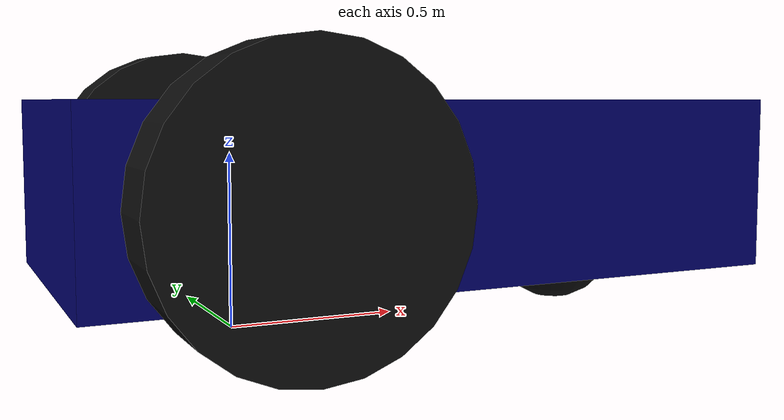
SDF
<?xml version="1.0" ?>
<sdf version="1.7">

    <model name="my_robot" canonical_link="chassis">

        <frame name="lidar_frame" attached_to="chassis">
            <pose>0.8 0 0.5 0 0 0</pose>
        </frame>

        <!-- CHASSIS -->
        <link name="chassis">
            <pose relative_to="__model__">0.5 0 0.4 0 0 0</pose>
            <inertial>
            <mass>1.14395</mass>
            <inertia>
                <ixx>0.095329</ixx>
                <ixy>0</ixy>
                <ixz>0</ixz>
                <iyy>0.381317</iyy>
                <iyz>0</iyz>
                <izz>0.476646</izz>
            </inertia>
            </inertial>

            <!-- VISUAL -->
            <visual name="visual">
            <geometry>
                <box>
                <size>2.0 1.0 0.5</size>
                </box>
            </geometry>
            <!-- COLOR -->
            <material>
                <ambient>0.0 0.0 0.3 1</ambient>
                <diffuse>0.0 0.0 0.4 1</diffuse>
                <specular>0.1 0.1 0.3 1</specular>
            </material>
            </visual>

            <collision name="collision">
                <geometry>
                    <box>
                    <size>2.0 1.0 0.5</size>
                    </box>
                </geometry>
            </collision>

            <sensor name="imu_sensor" type="imu">
                <always_on>true</always_on>
                <update_rate>1</update_rate>
                <visualize>true</visualize>
                <topic>imu</topic>
            </sensor>

            <sensor name="gpu_lidar" type="gpu_lidar">
                <pose relative_to="lidar_frame">0 0 0 0 0 0</pose>
                <topic>lidar</topic>
                <update_rate>10</update_rate>
                <ray>
                    <scan>
                        <horizontal>
                            <samples>640</samples>
                            <resolution>1</resolution>
                            <min_angle>-1.396263</min_angle>
                            <max_angle>1.396263</max_angle>
                        </horizontal>
                        <vertical>
                            <samples>1</samples>
                            <resolution>0.01</resolution>
                            <min_angle>0</min_angle>
                            <max_angle>0</max_angle>
                        </vertical>
                    </scan>
                    <range>
                        <min>0.08</min>
                        <max>10.0</max>
                        <resolution>0.01</resolution>
                    </range>
                </ray>
                <always_on>true</always_on>
                <visualize>true</visualize>

            </sensor>
        </link>

        <!-- RODA KIRI -->
        <link name="left_wheel">
            <pose relative_to="chassis">-0.5 0.6 0 -1.5707 0 0</pose>
            <inertial>
            <mass>1</mass>
            <inertia>
                <ixx>0.043333</ixx>
                <ixy>0</ixy>
                <ixz>0</ixz>
                <iyy>0.043333</iyy>
                <iyz>0</iyz>
                <izz>0.08</izz>
            </inertia>
            </inertial>

            <visual name="visual">
            <geometry>
                <cylinder>
                <radius>0.4</radius>
                <length>0.2</length>
                </cylinder>
            </geometry>
            <material>
                <ambient>0.05 0.05 0.05 1</ambient>
                <diffuse>0.05 0.05 0.05 1</diffuse>
                <specular>0.1 0.1 0.1 1</specular>
            </material>
            </visual>

            <collision name="collision">
            <geometry>
                <cylinder>
                <radius>0.4</radius>
                <length>0.2</length>
                </cylinder>
            </geometry>
            </collision>
        </link>

        <!-- RODA KANAN -->
        <link name="right_wheel">
            <pose relative_to="chassis">-0.5 -0.6 0 -1.5707 0 0</pose>
            <inertial>
            <mass>1</mass>
            <inertia>
                <ixx>0.043333</ixx>
                <ixy>0</ixy>
                <ixz>0</ixz>
                <iyy>0.043333</iyy>
                <iyz>0</iyz>
                <izz>0.08</izz>
            </inertia>
            </inertial>

            <visual name="visual">
            <geometry>
                <cylinder>
                <radius>0.4</radius>
                <length>0.2</length>
                </cylinder>
            </geometry>
            <material>
                <ambient>0.05 0.05 0.05 1</ambient>
                <diffuse>0.05 0.05 0.05 1</diffuse>
                <specular>0.1 0.1 0.1 1</specular>
            </material>
            </visual>

            <collision name="collision">
            <geometry>
                <cylinder>
                <radius>0.4</radius>
                <length>0.2</length>
                </cylinder>
            </geometry>
            </collision>
        </link>

        <frame name="caster_frame" attached_to="chassis">
            <pose>0.6 0 -0.2 0 0 0</pose>
        </frame>

        <link name="caster">
            <pose relative_to="caster_frame"/>
            <inertial>
            <mass>1</mass>
            <inertia>
                <ixx>0.016</ixx>
                <ixy>0</ixy>
                <ixz>0</ixz>
                <iyy>0.016</iyy>
                <iyz>0</iyz>
                <izz>0.016</izz>
            </inertia>
            </inertial>

            <visual name="visual">
            <geometry>
                <sphere>
                    <radius>0.2</radius>
                </sphere>
            </geometry>
            <material>
                <ambient>0.05 0.05 0.05 1</ambient>
                <diffuse>0.05 0.05 0.05 1</diffuse>
                <specular>0.1 0.1 0.1 1</specular>
            </material>
            </visual>

            <collision name="collision">
            <geometry>
                <sphere>
                    <radius>0.2</radius>
                </sphere>
            </geometry>
            </collision>
        </link>

        <!-- JOINT -->
        <joint name="left_wheel_joint" type="revolute">
            <pose relative_to="left_wheel"/>
            <parent>chassis</parent>
            <child>left_wheel</child>
            <axis>
                <xyz expressed_in="__model__">0 1 0</xyz>
                <limit>
                    <lower>-1.79769e+308</lower>
                    <upper>1.79769e+308</upper>
                </limit>
            </axis>
        </joint>

        <joint name="right_wheel_joint" type="revolute">
            <pose relative_to="right_wheel"/>
            <parent>chassis</parent>
            <child>right_wheel</child>
            <axis>
            <xyz expressed_in="__model__">0 1 0</xyz>
            <limit>
                <lower>-1.79769e+308</lower>
                <upper>1.79769e+308</upper>
            </limit>
            </axis>
        </joint>

        <joint name="caster_wheel" type="ball">
            <parent>chassis</parent>
            <child>caster</child>
        </joint>

        <plugin
            filename="libignition-gazebo-diff-drive-system.so"
            name="ignition::gazebo::systems::DiffDrive">
            <left_joint>left_wheel_joint</left_joint>
            <right_joint>right_wheel_joint</right_joint>
            <wheel_separation>1.2</wheel_separation>
            <wheel_radius>0.4</wheel_radius>
            <odom_publish_frequency>1</odom_publish_frequency>
            <topic>/cmd_vel</topic>
        </plugin>

        <!-- W = MOVE FORWARD -->
        <plugin filename="gz-sim-triggered-publisher-system" name="gz::sim::systems::TriggeredPublisher">
            <input type="gz.msgs.Int32" topic="/keyboard/keypress">
                <match field="data">87</match>
            </input>
            <output type="gz.msgs.Twist" topic="/cmd_vel">
                linear: {x: 0.5}, angular: {z: 0.0}
            </output>
        </plugin>

        <!-- S = MOVE BACKWARD -->

        <plugin filename="gz-sim-triggered-publisher-system" name="gz::sim::systems::TriggeredPublisher">
            <input type="gz.msgs.Int32" topic="/keyboard/keypress">
                <match field="data">83</match>
            </input>
            <output type="gz.msgs.Twist" topic="/cmd_vel">
                linear: {x: -0.5}, angular: {z: 0.0}
            </output>
        </plugin>

        <!-- A = TURN LEFT -->
        <plugin filename="gz-sim-triggered-publisher-system" name="gz::sim::systems::TriggeredPublisher">
            <input type="gz.msgs.Int32" topic="/keyboard/keypress">
                <match field="data">65</match>
            </input>
            <output type="gz.msgs.Twist" topic="/cmd_vel">
                linear: {x: 0.0}, angular: {z: 0.5}
            </output>
        </plugin>

        <!-- D = TURN RIGHT -->
        <plugin filename="gz-sim-triggered-publisher-system" name="gz::sim::systems::TriggeredPublisher">
            <input type="gz.msgs.Int32" topic="/keyboard/keypress">
                <match field="data">68</match>
            </input>
            <output type="gz.msgs.Twist" topic="/cmd_vel">
                linear: {x: 0.0}, angular: {z: -0.5}
            </output>
        </plugin>

        <plugin filename="libignition-gazebo-imu-system.so" name="ignition::gazebo::systems::Imu"/>
        <plugin filename="libignition-gazebo-sensors-system.so" name="ignition::gazebo::systems::Sensors">
            <render_engine>ogre2</render_engine>
        </plugin>

    </model>

</sdf>
